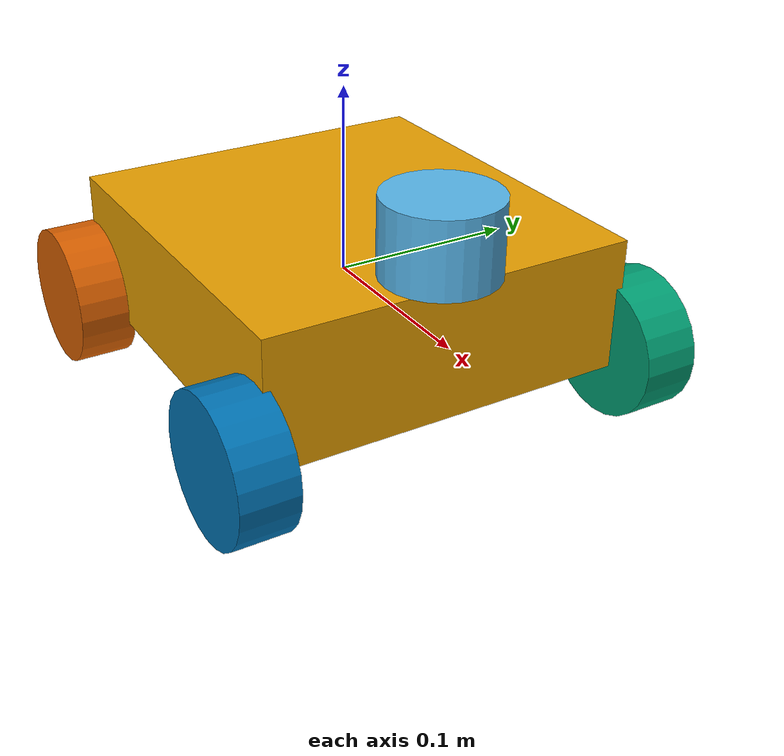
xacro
<?xml version="1.0" encoding="UTF-8"?>
<robot xmlns:xacro="http://wiki.ros.org/xacro" name="nav_mecanum">

  <!-- Use this if parameters are set from the launch file, otherwise delete -->
  <xacro:arg name="prefix" default="" />

  <xacro:include filename="$(find nav_mecanum_description)/urdf/nav_mecanum/nav_mecanum_macro.xacro"/>

  <!-- create link fixed to the "world" -->

  <!-- Load robot's macro with parameters -->
  <!-- set prefix if multiple robots are used -->
  <xacro:nav_mecanum prefix="$(arg prefix)" parent="odom">
    <origin xyz="0 0 0" rpy="0 0 0" />          <!-- position robot in the world -->
  </xacro:nav_mecanum>

</robot>

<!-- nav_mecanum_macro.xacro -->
<robot xmlns:xacro="http://wiki.ros.org/xacro">

  <xacro:include filename="$(find nav_mecanum_description)/urdf/common.xacro" />

  <xacro:macro name="nav_mecanum" params="prefix parent *origin">
    <!-- LINKS -->
    <!-- base link -->
    <link name="${prefix}base_link">
      <!-- Default inertial for Gazebo/Ingnition - copy and edit block from 'common.xacro'
           to get more realistic behaviour-->
      <visual>
        <origin xyz="0 0 0" rpy="0 0 0" />
        <geometry>
          <box size="0.21 0.2 0.07"/>
        </geometry>
      </visual>
      <collision>
        <origin xyz="0 0 0" rpy="0 0 0" />
        <geometry>
          <box size="0.193 0.223 0.07"/>
        </geometry>
      </collision>
    </link>
    <!-- laser -->
    <link name="${prefix}laser">
      <xacro:default_inertial/>
      <visual>
        <origin xyz="0 0 0" rpy="0 0 0" />
        <geometry>
          <cylinder length="0.04" radius="0.03"/>
        </geometry>
      </visual>
      <collision>
        <origin xyz="0 0 0" rpy="0 0 0" />
        <geometry>
          <cylinder length="0.04" radius="0.03"/>
        </geometry>
      </collision>
    </link>
    <!-- link 1 -->
    <link name="${prefix}link1">
      <!-- Default inertial for Gazebo/Ingnition - copy and edit block from 'common.xacro'
           to get more realistic behaviour-->
      <xacro:default_inertial/>
      <visual>
        <origin xyz="0 0 0" rpy="0 0 0" />
        <geometry>
          <cylinder length="0.03" radius="0.0375" />
        </geometry>
      </visual>
      <collision>
        <origin xyz="0 0 0" rpy="0 0 0" />
        <geometry>
          <cylinder length="0.03" radius="0.0375" />
        </geometry>
      </collision>
    </link>
    <!-- link 2 -->
    <link name="${prefix}link2">
      <!-- Default inertial for Gazebo/Ingnition - copy and edit block from 'common.xacro'
           to get more realistic behaviour-->
      <xacro:default_inertial/>
      <visual>
        <origin xyz="0 0 0" rpy="0 0 0" />
        <geometry>
          <cylinder length="0.03" radius="0.0375" />
        </geometry>
      </visual>
      <collision>
        <origin xyz="0 0 0" rpy="0 0 0" />
        <geometry>
          <cylinder length="0.03" radius="0.0375" />
        </geometry>
      </collision>
    </link>
    <!-- link 3 -->
    <link name="${prefix}link3">
      <!-- Default inertial for Gazebo/Ingnition - copy and edit block from 'common.xacro'
           to get more realistic behaviour-->
      <xacro:default_inertial/>
      <visual>
        <origin xyz="0 0 0" rpy="0 0 0" />
        <geometry>
          <cylinder length="0.03" radius="0.0375" />
        </geometry>
      </visual>
      <collision>
        <origin xyz="0 0 0" rpy="0 0 0" />
        <geometry>
          <cylinder length="0.03" radius="0.0375" />
        </geometry>
      </collision>
    </link>
    <!-- link 4 -->
    <link name="${prefix}link4">
      <!-- Default inertial for Gazebo/Ingnition - copy and edit block from 'common.xacro'
           to get more realistic behaviour-->
      <xacro:default_inertial/>
      <visual>
        <origin xyz="0 0 0" rpy="0 0 0" />
        <geometry>
          <cylinder length="0.03" radius="0.0375" />
        </geometry>
      </visual>
      <collision>
        <origin xyz="0 0 0" rpy="0 0 0" />
        <geometry>
          <cylinder length="0.03" radius="0.0375" />
        </geometry>
      </collision>
    </link>
    <!-- END LINKS -->

    <!-- JOINTS -->
    <!-- base_joint fixes base_link to the environment -->
    <!-- laser -->
    <joint name="${prefix}laser_joint" type="fixed">
      <origin xyz="0.09 0 0.055" rpy="0 0 ${pi}" />
      <parent link="${prefix}base_link" />
      <child link="${prefix}laser" />
      <axis xyz="0 0 1" />
    </joint>
    <!-- joint 1 -->
    <joint name="${prefix}left_front_wheel_joint" type="continuous">
      <origin xyz="0.0965 0.1115 -0.0275" rpy="${pi/2} ${pi/2} 0" />
      <parent link="${prefix}base_link" />
      <child link="${prefix}link1" />
      <axis xyz="0 0 1" />
    </joint>
    <!-- joint 2 -->
    <joint name="${prefix}left_rear_wheel_joint" type="continuous">
      <origin xyz="-0.0965 0.1115 -0.0275" rpy="${pi/2} ${pi/2} 0" />
      <parent link="${prefix}base_link" />
      <child link="${prefix}link2" />
      <axis xyz="0 0 1" />
    </joint>
    <!-- joint 3 -->
    <joint name="${prefix}right_front_wheel_joint" type="continuous">
      <origin xyz="0.0965 -0.1115 -0.0275" rpy="${pi/2} ${pi/2} 0" />
      <parent link="${prefix}base_link" />
      <child link="${prefix}link3" />
      <axis xyz="0 0 1" />
    </joint>
    <!-- joint 4 -->
    <joint name="${prefix}right_rear_wheel_joint" type="continuous">
      <origin xyz="-0.0965 -0.1115 -0.0275" rpy="${pi/2} ${pi/2} 0" />
      <parent link="${prefix}base_link" />
      <child link="${prefix}link4" />
      <axis xyz="0 0 1" />
    </joint>

  </xacro:macro>
</robot>
